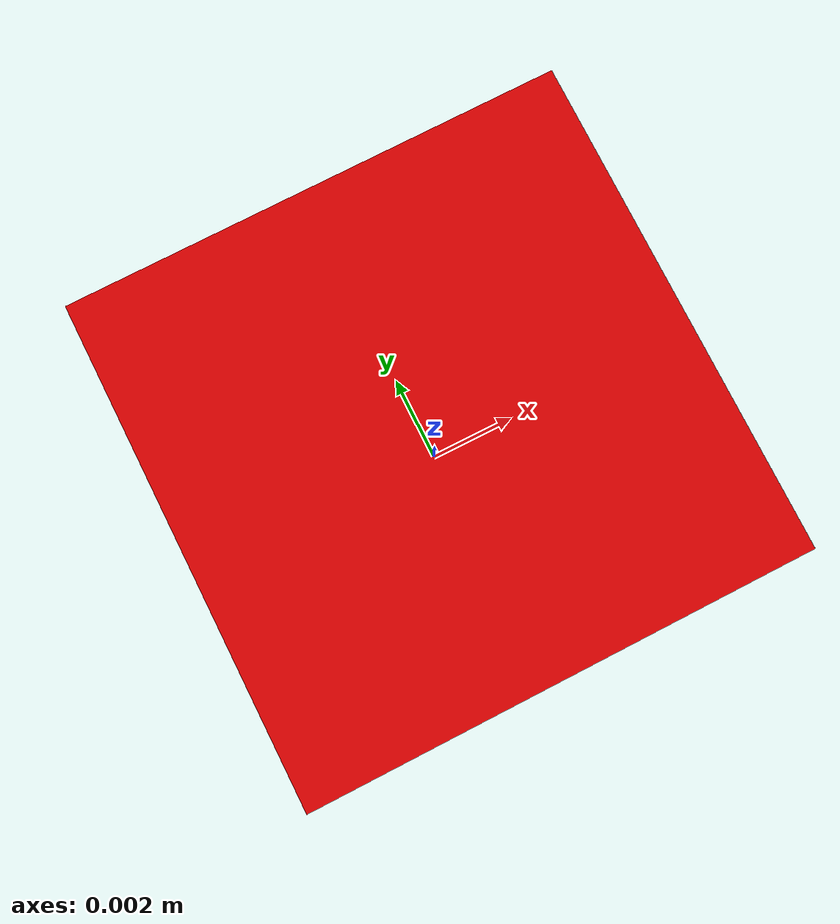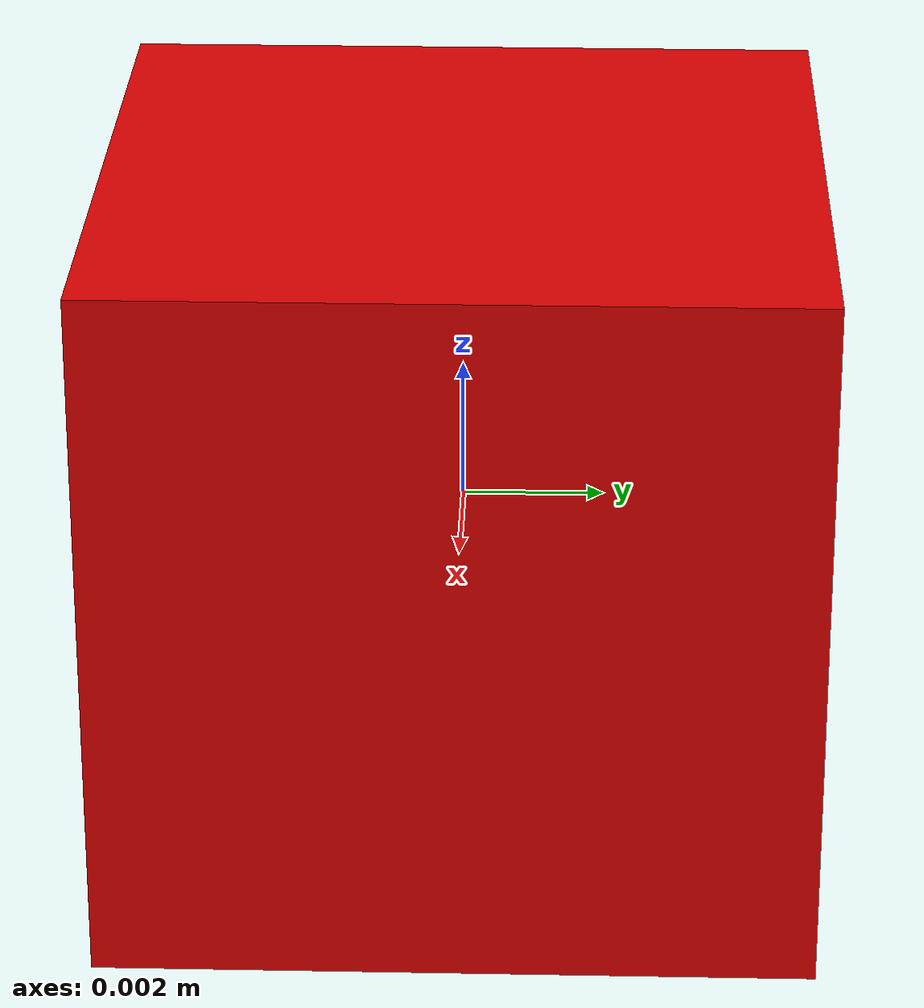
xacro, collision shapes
<?xml version="1.0"?>

<robot xmlns:sensor="http://playerstage.sourceforge.net/gazebo/xmlschema/#sensor"
       xmlns:controller="http://playerstage.sourceforge.net/gazebo/xmlschema/#controller"
       xmlns:interface="http://playerstage.sourceforge.net/gazebo/xmlschema/#interface"
       xmlns:xacro="http://ros.org/wiki/xacro"
name="pioneer3dx">

<!-- Chassis -->
	<link name="base_link">
		<inertial>
			<mass value="3.5"/>
			<origin xyz="-0.025 0 -0.223"/>
			<inertia ixx="1" ixy="0" ixz="0"
				 iyy="1" iyz="0"
				 izz="1"/>
		</inertial>
		<visual name="base_visual">
			<origin xyz="0 0 0.177" rpy="0 0 0"/>
			<geometry name="pioneer_geom">
				<mesh filename="package://p2os_urdf/meshes/p3at_meshes/chassis.stl"/>
			</geometry>
			<material name="ChassisRed">
				<color rgba="0.851 0.0 0.0 1.0"/>
			</material>
		</visual>
		<collision>
			<origin xyz="0 0 0" rpy="0 0 0"/>
				<geometry>
					<box size="0.01 0.01 0.01"/>
				</geometry>
		</collision>
	</link>

<!-- Top -->
	<link name="top_plate">
		<inertial>
			<mass value="0"/>
			<origin xyz="-0.025 0 -0.223"/>
			<inertia ixx="1" ixy="0" ixz="0"
				 iyy="1" iyz="0"
 				izz="1"/>
		</inertial>
		<visual name="base_visual">
			<origin xyz="0.003 0 0.274" rpy="0 0 0"/>
			<geometry name="pioneer_geom">
				<mesh filename="package://p2os_urdf/meshes/p3at_meshes/top.stl"/>
			</geometry>
			<material name="TopBlack">
					<color rgba="0.038 0.038 0.038 1.0"/>
			</material>
		</visual>
		<collision>
			<origin xyz="0 0 0" rpy="0 0 0"/>
			<geometry>
				<box size="0 0 0"/>
			</geometry>
		</collision>
	</link>

<!-- Front + Back Sonar -->
	<link name="front_sonar">
		<inertial>
			<mass value="0"/>
			<origin xyz="0 0 0"/>
			<inertia ixx="1" ixy="0" ixz="0"
				 iyy="1" iyz="0" izz="1"/>
		</inertial>
		<visual name="base_visual">
			<origin xyz="0.193 0 0.25" rpy="0 0 0"/>
			<geometry name="pioneer_geom">
				<mesh filename="package://p2os_urdf/meshes/p3at_meshes/front_sonar.stl"/>
			</geometry>
			<material name="SonarYellow">
				<color rgba="0.715 0.583 0.210 1.0"/>
			</material>
		</visual>
		<collision>
			<origin xyz="0 0 0" rpy="0 0 0"/>
			<geometry>
				<box size="0 0 0"/>
			</geometry>
		</collision>
	</link>

	<link name="back_sonar">
		<inertial>
			<mass value="0"/>
			<origin xyz="0 0 0"/>
			<inertia ixx="1" ixy="0" ixz="0"
				 iyy="1" iyz="0" izz="1"/>
		</inertial>
		<visual name="base_visual">
			<origin xyz="-0.187 0 0.247" rpy="0 0 0"/>
			<geometry name="pioneer_geom">
				<mesh filename="package://p2os_urdf/meshes/p3at_meshes/back_sonar.stl"/>
			</geometry>
			<material name="SonarYellow">
				<color rgba="0.715 0.583 0.210 1.0"/>
			</material>
		</visual>
		<collision>
			<origin xyz="0 0 0" rpy="0 0 0"/>
			<geometry>
				<box size="0 0 0"/>
			</geometry>
		</collision>
	</link>

<!-- Axles -->
	<link name="fr_axle">
		<inertial>
			<mass value="0"/>
			<origin xyz="0 0 0"/>
			<inertia ixx="1" ixy="0" ixz="0"
				 iyy="1" iyz="0" izz="1"/>
  	 	</inertial>
	<visual name="base_visual">
		<origin xyz="0.135 -0.156 0.111" rpy="0 0 0"/>
		<geometry name="pioneer_geom">
			<mesh filename="package://p2os_urdf/meshes/p3at_meshes/axle.stl"/>
		</geometry>
		<material name="AxleGrey">
			<color rgba="0.5 0.5 0.5 1"/>
		</material>
	</visual>
	<collision>
		<origin xyz="0 0 0" rpy="0 0 0"/>
		<geometry>
			<box size="0 0 0"/>
		</geometry>
	</collision>
	</link>

	<link name="fl_axle">
		<inertial>
			<mass value="0"/>
			<origin xyz="0 0 0"/>
			<inertia ixx="1" ixy="0" ixz="0"
				 iyy="1" iyz="0" izz="1"/>
  	 	</inertial>
	<visual name="base_visual">
		<origin xyz="0.135 0.156 0.111" rpy="0 0 0"/>
		<geometry name="pioneer_geom">
			<mesh filename="package://p2os_urdf/meshes/p3at_meshes/axle.stl"/>
		</geometry>
		<material name="AxleGrey">
			<color rgba="0.5 0.5 0.5 1"/>
		</material>
	</visual>
	<collision>
		<origin xyz="0 0 0" rpy="0 0 0"/>
		<geometry>
			<box size="0 0 0"/>
		</geometry>
	</collision>
	</link>

	<link name="br_axle">
		<inertial>
			<mass value="0"/>
			<origin xyz="0 0 0"/>
			<inertia ixx="1" ixy="0" ixz="0"
				 iyy="1" iyz="0" izz="1"/>
  	 	</inertial>
	<visual name="base_visual">
		<origin xyz="-0.134 -0.156 0.111" rpy="0 0 0"/>
		<geometry name="pioneer_geom">
			<mesh filename="package://p2os_urdf/meshes/p3at_meshes/axle.stl"/>
		</geometry>
		<material name="AxleGrey">
			<color rgba="0.5 0.5 0.5 1"/>
		</material>
	</visual>
	<collision>
		<origin xyz="0 0 0" rpy="0 0 0"/>
		<geometry>
			<box size="0 0 0"/>
		</geometry>
	</collision>
	</link>

	<link name="bl_axle">
		<inertial>
			<mass value="0"/>
			<origin xyz="0 0 0"/>
			<inertia ixx="1" ixy="0" ixz="0"
				 iyy="1" iyz="0" izz="1"/>
  	 	</inertial>
	<visual name="base_visual">
		<origin xyz="-0.134 0.156 0.111" rpy="0 0 0"/>
		<geometry name="pioneer_geom">
			<mesh filename="package://p2os_urdf/meshes/p3at_meshes/axle.stl"/>
		</geometry>
		<material name="AxleGrey">
			<color rgba="0.5 0.5 0.5 1"/>
		</material>
	</visual>
	<collision>
		<origin xyz="0 0 0" rpy="0 0 0"/>
		<geometry>
			<box size="0 0 0"/>
		</geometry>
	</collision>
	</link>

<!-- Wheels -->
	<link name="fr_wheel">
		<inertial>
			<mass value="0"/>
			<origin xyz="0 0 0"/>
			<inertia ixx="1" ixy="0" ixz="0"
				 iyy="1" iyz="0" izz="1"/>
  	 	</inertial>
	<visual name="base_visual">
		<origin xyz="0.135 -0.199 0.111" rpy="0 0 0"/>
		<geometry name="pioneer_geom">
			<mesh filename="package://p2os_urdf/meshes/p3at_meshes/wheel.stl"/>
		</geometry>
		<material name="WheelBlack">
			<color rgba="0.117 0.117 0.117 1"/>
		</material>
	</visual>
	<collision>
		<origin xyz="0 0 0" rpy="0 0 0"/>
		<geometry>
			<box size="0 0 0"/>
		</geometry>
	</collision>
	</link>

	<link name="fl_wheel">
		<inertial>
			<mass value="0"/>
			<origin xyz="0 0 0"/>
			<inertia ixx="1" ixy="0" ixz="0"
				 iyy="1" iyz="0" izz="1"/>
  	 	</inertial>
	<visual name="base_visual">
		<origin xyz="0.135 0.199 0.111" rpy="0 0 0"/>
		<geometry name="pioneer_geom">
			<mesh filename="package://p2os_urdf/meshes/p3at_meshes/wheel.stl"/>
		</geometry>
		<material name="WheelBlack"/>
	</visual>
	<collision>
		<origin xyz="0 0 0" rpy="0 0 0"/>
		<geometry>
			<box size="0 0 0"/>
		</geometry>
	</collision>
	</link>

	<link name="br_wheel">
		<inertial>
			<mass value="0"/>
			<origin xyz="0 0 0"/>
			<inertia ixx="1" ixy="0" ixz="0"
				 iyy="1" iyz="0" izz="1"/>
  	 	</inertial>
	<visual name="base_visual">
		<origin xyz="-0.134 -0.199 0.111" rpy="0 0 0"/>
		<geometry name="pioneer_geom">
			<mesh filename="package://p2os_urdf/meshes/p3at_meshes/wheel.stl"/>
		</geometry>
		<material name="WheelBlack"/>
	</visual>
	<collision>
		<origin xyz="0 0 0" rpy="0 0 0"/>
		<geometry>
			<box size="0 0 0"/>
		</geometry>
	</collision>
	</link>

	<link name="bl_wheel">
		<inertial>
			<mass value="0"/>
			<origin xyz="0 0 0"/>
			<inertia ixx="1" ixy="0" ixz="0"
				 iyy="1" iyz="0" izz="1"/>
  	 	</inertial>
	<visual name="base_visual">
		<origin xyz="-0.134 0.199 0.111" rpy="0 0 0"/>
		<geometry name="pioneer_geom">
			<mesh filename="package://p2os_urdf/meshes/p3at_meshes/wheel.stl"/>
		</geometry>
		<material name="WheelBlack"/>
	</visual>
	<collision>
		<origin xyz="0 0 0" rpy="0 0 0"/>
		<geometry>
			<box size="0 0 0"/>
		</geometry>
	</collision>
	</link>

<!-- Hubcaps -->
	<link name="fr_hub">
		<inertial>
			<mass value="0"/>
			<origin xyz="0 0 0"/>
			<inertia ixx="1" ixy="0" ixz="0"
				 iyy="1" iyz="0" izz="1"/>
  	 	</inertial>
	<visual name="base_visual">
		<origin xyz="0.135 -0.199 0.111" rpy="0 0 0"/>
		<geometry name="pioneer_geom">
			<mesh filename="package://p2os_urdf/meshes/p3at_meshes/right_hubcap.stl"/>
		</geometry>
		<material name="HubcapYellow">
			<color rgba="1.0 0.811 0.151 1.0"/>
		</material>
	</visual>
	<collision>
		<origin xyz="0 0 0" rpy="0 0 0"/>
		<geometry>
			<box size="0 0 0"/>
		</geometry>
	</collision>
	</link>

	<link name="fl_hub">
		<inertial>
			<mass value="0"/>
			<origin xyz="0 0 0"/>
			<inertia ixx="1" ixy="0" ixz="0"
				 iyy="1" iyz="0" izz="1"/>
  	 	</inertial>
	<visual name="base_visual">
		<origin xyz="0.135 0.199 0.111" rpy="0 0 0"/>
		<geometry name="pioneer_geom">
			<mesh filename="package://p2os_urdf/meshes/p3at_meshes/left_hubcap.stl"/>
		</geometry>
		<material name="HubcapYellow"/>
	</visual>
	<collision>
		<origin xyz="0 0 0" rpy="0 0 0"/>
		<geometry>
			<box size="0 0 0"/>
		</geometry>
	</collision>
	</link>

	<link name="br_hub">
		<inertial>
			<mass value="0"/>
			<origin xyz="0 0 0"/>
			<inertia ixx="1" ixy="0" ixz="0"
				 iyy="1" iyz="0" izz="1"/>
  	 	</inertial>
	<visual name="base_visual">
		<origin xyz="-0.134 -0.199 0.111" rpy="0 0 0"/>
		<geometry name="pioneer_geom">
			<mesh filename="package://p2os_urdf/meshes/p3at_meshes/right_hubcap.stl"/>
		</geometry>
		<material name="HubcapYellow"/>
	</visual>
	<collision>
		<origin xyz="0 0 0" rpy="0 0 0"/>
		<geometry>
			<box size="0 0 0"/>
		</geometry>
	</collision>
	</link>

	<link name="bl_hub">
		<inertial>
			<mass value="0"/>
			<origin xyz="0 0 0"/>
			<inertia ixx="1" ixy="0" ixz="0"
				 iyy="1" iyz="0" izz="1"/>
  	 	</inertial>
	<visual name="base_visual">
		<origin xyz="-0.134 0.199 0.111" rpy="0 0 0"/>
		<geometry name="pioneer_geom">
			<mesh filename="package://p2os_urdf/meshes/p3at_meshes/left_hubcap.stl"/>
		</geometry>
		<material name="HubcapYellow"/>
	</visual>
	<collision>
		<origin xyz="0 0 0" rpy="0 0 0"/>
		<geometry>
			<box size="0 0 0"/>
		</geometry>
	</collision>
	</link>

<!-- Joints -->
	<joint name="base_top_joint" type="fixed">
		<origin xyz="0 0 0" rpy="0 0 0"/>
		<parent link="base_link"/>
		<child link="top_plate"/>
	</joint>

	<joint name="base_front_joint" type="fixed">
		<origin xyz="0 0 0" rpy="0 0 0"/>
		<parent link="base_link"/>
		<child link="front_sonar"/>
	</joint>

	<joint name="base_back_joint" type="fixed">
		<origin xyz="0 0 0" rpy="0 0 0"/>
		<parent link="base_link"/>
		<child link="back_sonar"/>
	</joint>

	<joint name="base_fr_axle_joint" type="fixed">
		<origin xyz="0 0 0" rpy="0 0 0"/>
		<parent link="base_link"/>
		<child link="fr_axle"/>
	</joint>

	<joint name="base_fr_hub_joint" type="fixed">
		<origin xyz="0 0 0" rpy="0 0 0"/>
		<parent link="fr_axle"/>
		<child link="fr_hub"/>
	</joint>

	<joint name="base_fr_wheel_joint" type="fixed">
		<origin xyz="0 0 0" rpy="0 0 0"/>
		<parent link="fr_hub"/>
		<child link="fr_wheel"/>
	</joint>

	<joint name="base_fl_axle_joint" type="fixed">
		<origin xyz="0 0 0" rpy="0 0 0"/>
		<parent link="base_link"/>
		<child link="fl_axle"/>
	</joint>

	<joint name="base_fl_hub_joint" type="fixed">
		<origin xyz="0 0 0" rpy="0 0 0"/>
		<parent link="fl_axle"/>
		<child link="fl_hub"/>
	</joint>

	<joint name="base_fl_wheel_joint" type="fixed">
		<origin xyz="0 0 0" rpy="0 0 0"/>
		<parent link="fl_hub"/>
		<child link="fl_wheel"/>
	</joint>

	<joint name="base_br_axle_joint" type="fixed">
		<origin xyz="0 0 0" rpy="0 0 0"/>
		<parent link="base_link"/>
		<child link="br_axle"/>
	</joint>

	<joint name="base_br_hub_joint" type="fixed">
		<origin xyz="0 0 0" rpy="0 0 0"/>
		<parent link="fr_axle"/>
		<child link="br_hub"/>
	</joint>

	<joint name="base_br_wheel_joint" type="fixed">
		<origin xyz="0 0 0" rpy="0 0 0"/>
		<parent link="fr_hub"/>
		<child link="br_wheel"/>
	</joint>

	<joint name="base_bl_axle_joint" type="fixed">
		<origin xyz="0 0 0" rpy="0 0 0"/>
		<parent link="base_link"/>
		<child link="bl_axle"/>
	</joint>

	<joint name="base_bl_hub_joint" type="fixed">
		<origin xyz="0 0 0" rpy="0 0 0"/>
		<parent link="bl_axle"/>
		<child link="bl_hub"/>
	</joint>

	<joint name="base_bl_wheel_joint" type="fixed">
		<origin xyz="0 0 0" rpy="0 0 0"/>
		<parent link="bl_hub"/>
		<child link="bl_wheel"/>
	</joint>

</robot>
